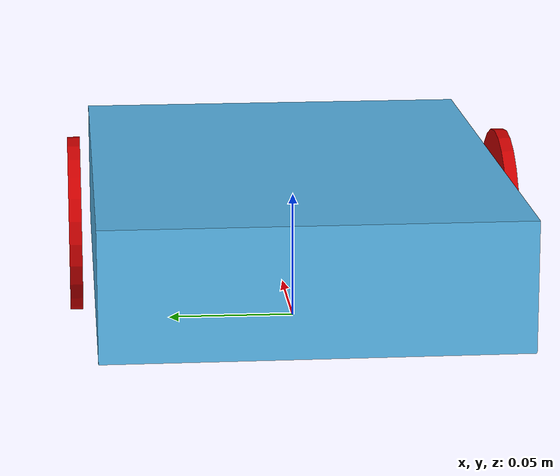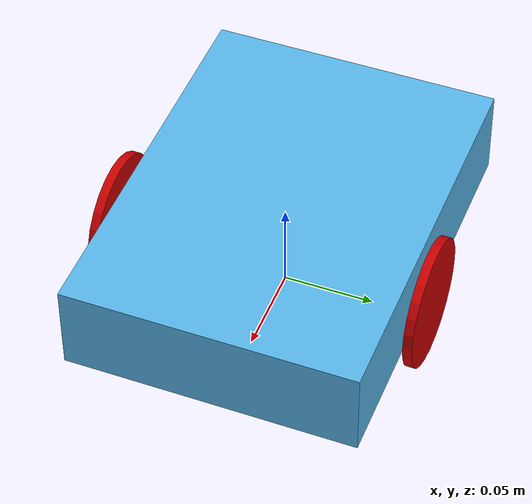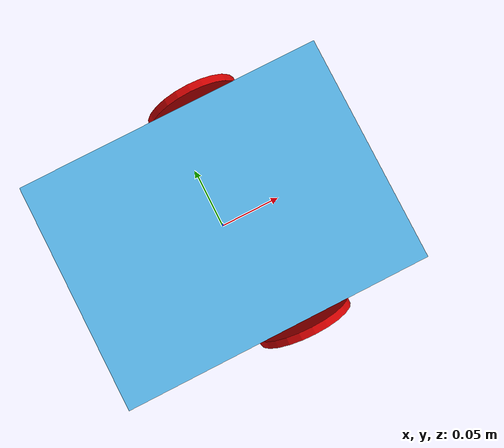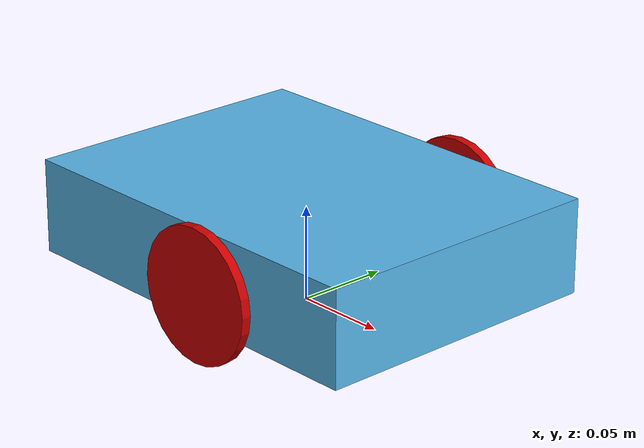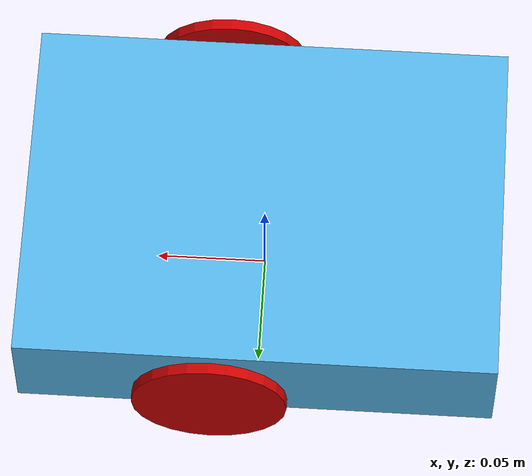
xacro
<?xml version="1.0"?>
<robot xmlns:xacro = "http://www.ros.org/wiki/xacro" name="striker">

  <xacro:property name="base_width" value="0.16"/>
  <xacro:property name="base_len" value="0.216"/>
  <xacro:property name="wheel_radius" value="0.035"/>
  <xacro:property name="base_wheel_gap" value="0.007"/>
  <xacro:property name="wheel_separation" value="0.15"/>
  <xacro:property name="wheel_joint_offset" value="0.02"/>
  <xacro:property name="caster_wheel_radius" value="0.01652"/>
  <xacro:property name="caster_wheel_joint_offset" value="-0.02"/>

  <xacro:include filename="$(find striker)/urdf/striker_gazebo_plugins.xacro"/>
  <material name="blue">
    <color rgba="0 0 0.8 1"/>
  </material>
  <material name="black">
    <color rgba="0 0 0 1"/>
  </material>
  <material name="white">
    <color rgba="1 1 1 1"/>
  </material>
  <material name="red">
    <color rgba="0.8 0.0 0.0 1.0"/>
  </material>

   <xacro:macro name="box_inertia" params="m w h d">
    <inertial>
      <mass value="${m}"/>
      <inertia ixx="${m / 12.0 * (d*d + h*h)}" ixy="0.0" ixz="0.0" iyy="${m / 12.0 * (w*w + h*h)}" iyz="0.0" izz="${m / 12.0 * (w*w + d*d)}"/>
    </inertial>
  </xacro:macro>

  <link name="base_footprint">
    <xacro:box_inertia m="20" w="0.001" h="0.001" d="0.001"/>
    <visual>
        <origin xyz="0 0 0" rpy="0 0 0" />
        <geometry>
            <box size="0.001 0.001 0.001" />
        </geometry>
    </visual>
  </link>

  <link name="base_link">
    <xacro:box_inertia m="20" w="${base_len}" h="${base_width}" d="0.01"/>
    <visual>
      <geometry>
        <box size="${base_len} ${base_width} 0.05"/>
      </geometry>
    </visual>
    <collision>
      <geometry>
        <box size="${base_len} ${base_width} 0.05"/>
      </geometry>
    </collision>
  </link>

  <joint name="base_link_joint" type="fixed">
    <origin xyz="0 0 ${wheel_radius + 0.005}" rpy="0 0 0" />
    <parent link="base_footprint"/>
    <child link="base_link" />
  </joint>

  <xacro:macro name="cylinder_inertia" params="m r h">
    <inertial>
      <mass value="${m}"/>
      <inertia ixx="${m*(3*r*r+h*h)/12}" ixy = "0" ixz = "0" iyy="${m*(3*r*r+h*h)/12}" iyz = "0" izz="${m*r*r/2}"/>
    </inertial>
  </xacro:macro>

  <xacro:macro name="wheel" params="prefix reflect">
    <link name="${prefix}_wheel">
      <visual>
        <origin xyz="0 0 0" rpy="${pi/2} 0 0"/>
        <geometry>
          <cylinder radius="${wheel_radius}" length="0.005"/>
        </geometry>
        <material name="red"/>
      </visual>
      <collision>
        <origin xyz="0 0 0" rpy="${pi/2} 0 0"/>
        <geometry>
          <cylinder radius="${wheel_radius}" length="0.005"/>
        </geometry>
      </collision>
      <xacro:cylinder_inertia m="10" r="${wheel_radius}" h="0.005"/>
    </link>

    <joint name="${prefix}_wheel_joint" type="continuous">
      <axis xyz="0 1 0" rpy="0 0 0" />
      <parent link="base_link"/>
      <child link="${prefix}_wheel"/>
      <origin xyz="${wheel_joint_offset} ${((base_width/2)+base_wheel_gap)*reflect} -0.005" rpy="0 0 0"/>
    </joint>
  </xacro:macro>
 <xacro:macro name="sphere_inertia" params="m r">
    <inertial>
      <mass value="${m}"/>
      <inertia ixx="${2.0*m*(r*r)/5.0}" ixy="0.0" ixz="0.0" iyy="${2.0*m*(r*r)/5.0}" iyz="0.0" izz="${2.0*m*(r*r)/5.0}"/>
    </inertial>
  </xacro:macro>

   <link name="caster_wheel">
    <visual>
      <origin xyz="0 0 0" rpy="0 0 0"/>
      <geometry>
        <sphere radius="${caster_wheel_radius}"/>
      </geometry>
    </visual>
    <collision>
      <origin xyz="0 0 0" rpy="0 0 0"/>
      <geometry>
        <sphere radius="${caster_wheel_radius}"/>
      </geometry>
    </collision>
    <xacro:sphere_inertia m="5" r="${caster_wheel_radius}"/>
  </link>

  <joint name="caster_wheel_joint" type="continuous">
    <axis xyz="0 1 0" rpy="0 0 0" />
    <parent link="base_link"/>
    <child link="caster_wheel"/>
    <origin xyz="${caster_wheel_joint_offset} 0 -${caster_wheel_radius+0.005}" rpy="0 0 0"/>
  </joint>

  <xacro:wheel prefix="left" reflect="1"/>
  <xacro:wheel prefix="right" reflect="-1"/>
</robot>
